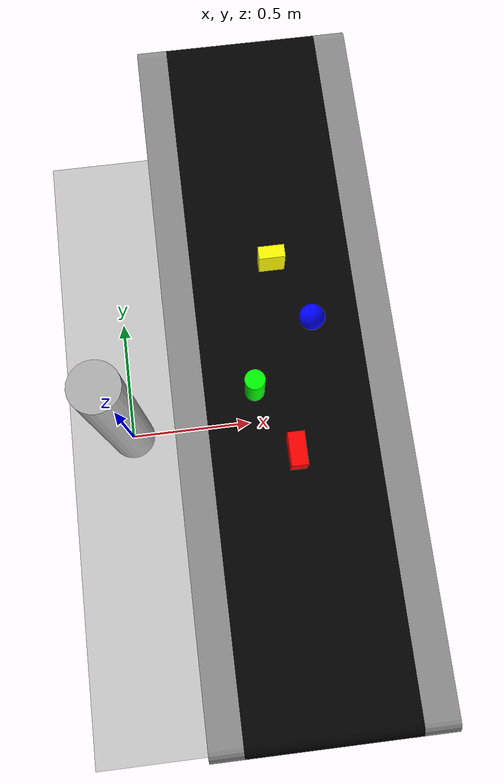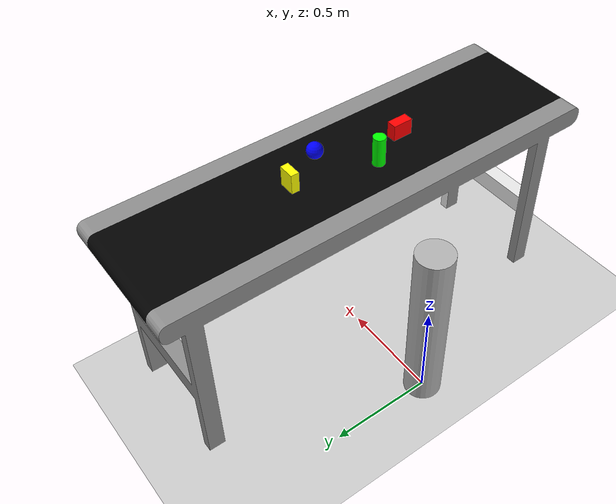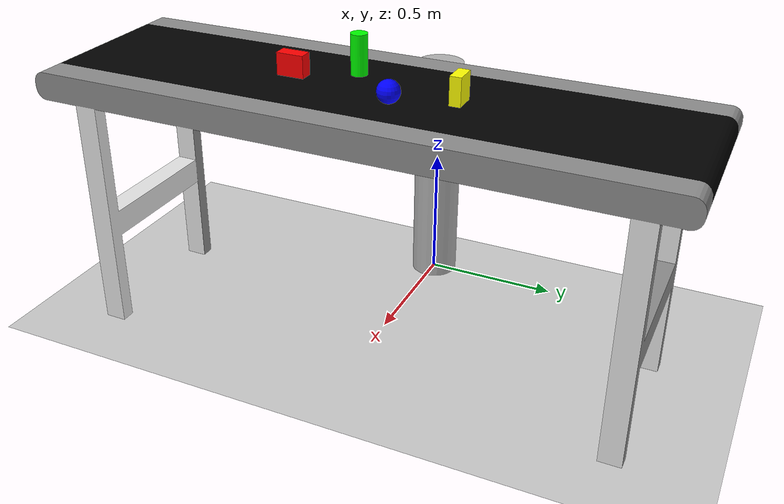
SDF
<sdf version="1.8">
 <world name="default">
  <plugin filename="gz-sim-physics-system" name="gz::sim::systems::Physics"/>
  <plugin filename="gz-sim-user-commands-system" name="gz::sim::systems::UserCommands"/>
  <plugin filename="gz-sim-scene-broadcaster-system" name="gz::sim::systems::SceneBroadcaster"/>
  <plugin filename="gz-sim-sensors-system" name="gz::sim::systems::Sensors">
   <render_engine>ogre2</render_engine>
  </plugin>
  <plugin filename="libgz_link_attacher.so" name="gz_link_attacher::LinkAttacher"/>
  <plugin filename="gz-sim-contact-system" name="gz::sim::systems::Contact"/>
  <scene>
   <ambient>0.4 0.4 0.4 1</ambient>
   <background>0.7 0.7 0.7 1</background>
   <shadows>true</shadows>
   <grid>false</grid>
  </scene>
  <light type="directional" name="sun">
   <pose>0 0 10 0 0 0</pose>
   <diffuse>0.8 0.8 0.8 1</diffuse>
   <specular>0.2 0.2 0.2 1</specular>
   <direction>-0.5 0.1 -0.9</direction>
   <visualize>false</visualize>
  </light>
  <model name="ground_plane">
   <static>true</static>
   <link name="link">
    <collision name="collision">
     <geometry><plane><normal>0 0 1</normal><size>100 100</size></plane></geometry>
    </collision>
    <visual name="visual">
     <geometry><plane><normal>0 0 1</normal><size>100 100</size></plane></geometry>
     <material>
      <ambient>0.8 0.8 0.8 1</ambient>
      <diffuse>0.8 0.8 0.8 1</diffuse>
      <specular>0.8 0.8 0.8 1</specular>
     </material>
    </visual>
   </link>
  </model>
  <model name="conveyor">
   <static>true</static>
   <pose>0.6 0 0 0 0 1.57</pose>
   <link name="link">
    <visual name="visual">
     <pose>0 0 0.95 0 0 0</pose>
     <geometry><mesh><scale>0.45 0.35 0.5</scale><uri>model://conveyor/meshes/conveyor.dae</uri></mesh></geometry>
    </visual>
    <collision name="collision_0">
     <pose>0 0 0.95 0 0 0</pose>
     <geometry><box><size>2.4 0.8 0.1</size></box></geometry>
    </collision>
   </link>
  </model>
  <model name="robotbase">
   <static>true</static>
   <link name="link">
    <pose>0 0 0.45 0 0 0</pose>
    <visual name="visual">
     <geometry><cylinder><radius>0.09</radius><length>0.9</length></cylinder></geometry>
     <material>
      <ambient>0.3 0.3 0.3 1</ambient>
      <diffuse>0.7 0.7 0.7 1</diffuse>
      <specular>0.01 0.01 0.01 1</specular>
     </material>
    </visual>
    <collision name="collision">
     <geometry><cylinder><radius>0.09</radius><length>0.9</length></cylinder></geometry>
    </collision>
   </link>
  </model>
  <model name="blue_ball">
   <pose>0.7 0.1 1.04 0 0 0</pose>
   <link name="link">
    <inertial>
     <mass>0.01</mass>
     <inertia>
      <ixx>0.0000064</ixx>
      <ixy>0</ixy>
      <ixz>0</ixz>
      <iyy>0.0000064</iyy>
      <iyz>0</iyz>
      <izz>0.0000064</izz>
     </inertia>
    </inertial>
    <collision name="collision"><geometry><sphere><radius>0.04</radius></sphere></geometry></collision>
    <visual name="visual">
     <geometry><sphere><radius>0.04</radius></sphere></geometry>
     <material><ambient>0 0 1 1</ambient><diffuse>0 0 1 1</diffuse><specular>0.5 0.5 0.5 1</specular></material>
    </visual>
   </link>
  </model>
  <model name="green_cylinder">
   <pose>0.5 -0.1 1.07 0 0 0</pose>
   <link name="link">
    <inertial>
     <mass>0.01</mass>
     <inertia>
      <ixx>0.000021</ixx>
      <ixy>0</ixy>
      <ixz>0</ixz>
      <iyy>0.000021</iyy>
      <iyz>0</iyz>
      <izz>0.0000045</izz>
     </inertia>
    </inertial>
    <collision name="collision">
     <geometry><cylinder><radius>0.03</radius><length>0.15</length></cylinder></geometry>
    </collision>
    <visual name="visual">
     <geometry><cylinder><radius>0.03</radius><length>0.15</length></cylinder></geometry>
     <material><ambient>0 1 0 1</ambient><diffuse>0 1 0 1</diffuse><specular>0.5 0.5 0.5 1</specular></material>
    </visual>
   </link>
  </model>
  <model name="red_box">
   <pose>0.6 -0.3 1.04 0 0 0</pose>
   <link name="link">
    <inertial>
     <mass>0.01</mass>
     <inertia>
      <ixx>0.0000104</ixx>
      <ixy>0</ixy>
      <ixz>0</ixz>
      <iyy>0.0000084</iyy>
      <iyz>0</iyz>
      <izz>0.0000041</izz>
     </inertia>
    </inertial>
    <collision name="collision"><geometry><box><size>0.05 0.1 0.08</size></box></geometry></collision>
    <visual name="visual">
     <geometry><box><size>0.05 0.1 0.08</size></box></geometry>
     <material><ambient>1 0 0 1</ambient><diffuse>1 0 0 1</diffuse><specular>0.5 0.5 0.5 1</specular></material>
    </visual>
   </link>
  </model>
  <model name="yellow_box">
   <pose>0.6 0.3 1.05 0 0 0</pose>
   <link name="link">
    <inertial>
     <mass>0.01</mass>
     <inertia>
      <ixx>0.0000096</ixx>
      <ixy>0</ixy>
      <ixz>0</ixz>
      <iyy>0.0000136</iyy>
      <iyz>0</iyz>
      <izz>0.0000066</izz>
     </inertia>
    </inertial>
    <collision name="collision"><geometry><box><size>0.08 0.04 0.1</size></box></geometry></collision>
    <visual name="visual">
     <geometry><box><size>0.08 0.04 0.1</size></box></geometry>
     <material><ambient>1 1 0 1</ambient><diffuse>1 1 0 1</diffuse><specular>0.5 0.5 0.5 1</specular></material>
    </visual>
   </link>
  </model>
 </world>
</sdf>
